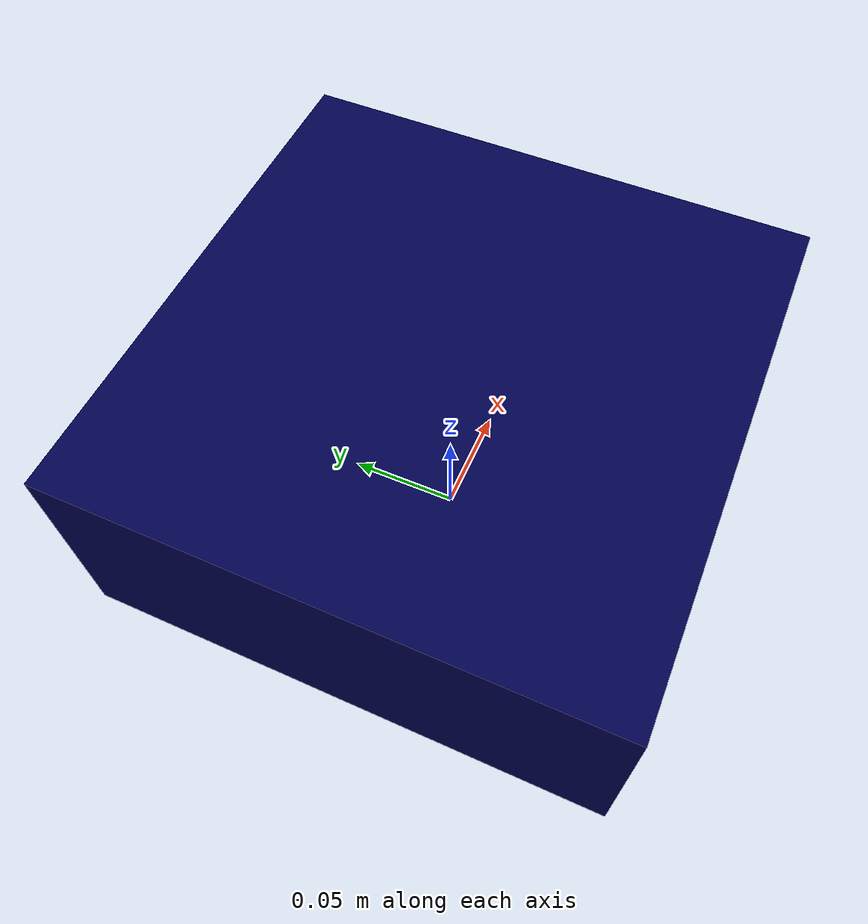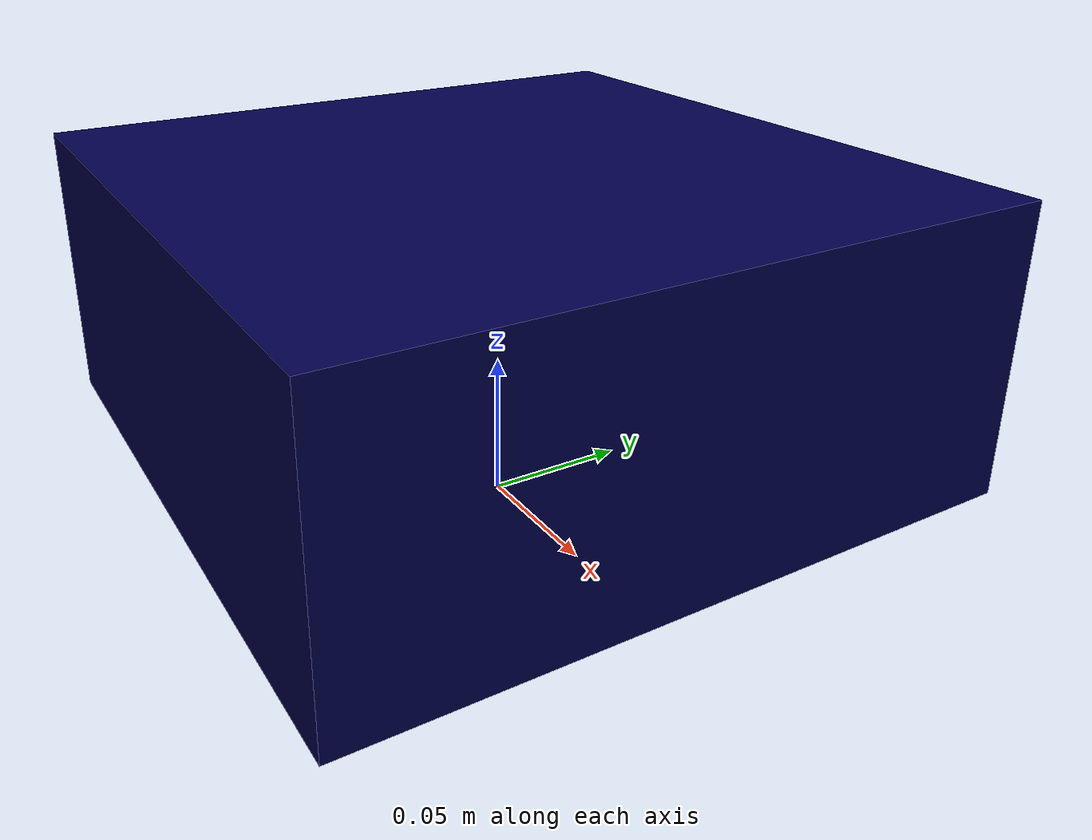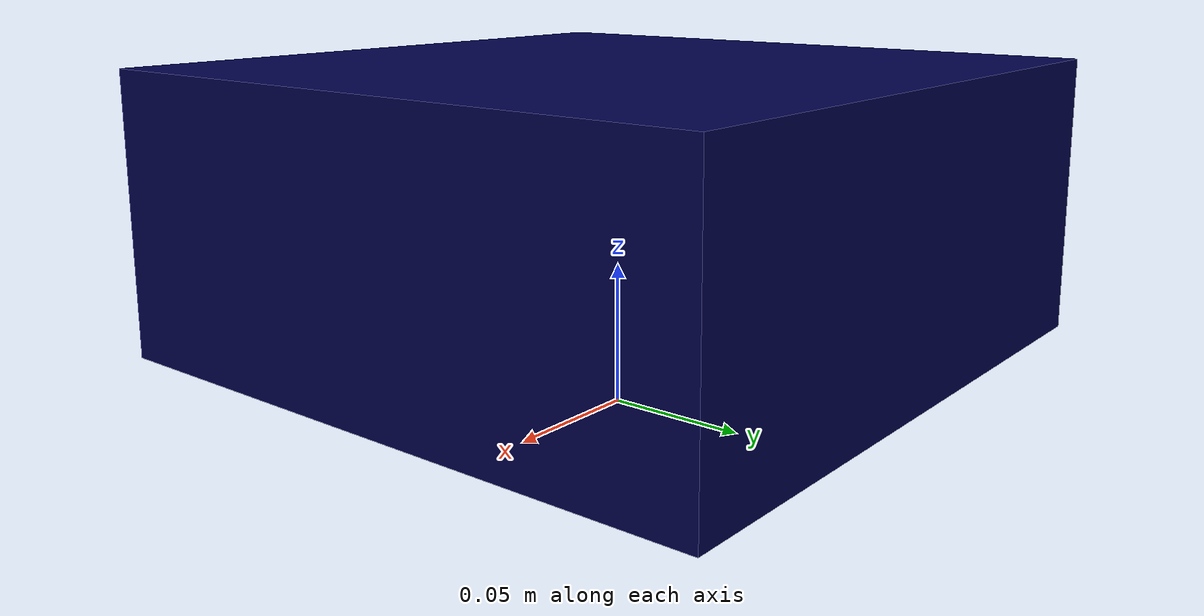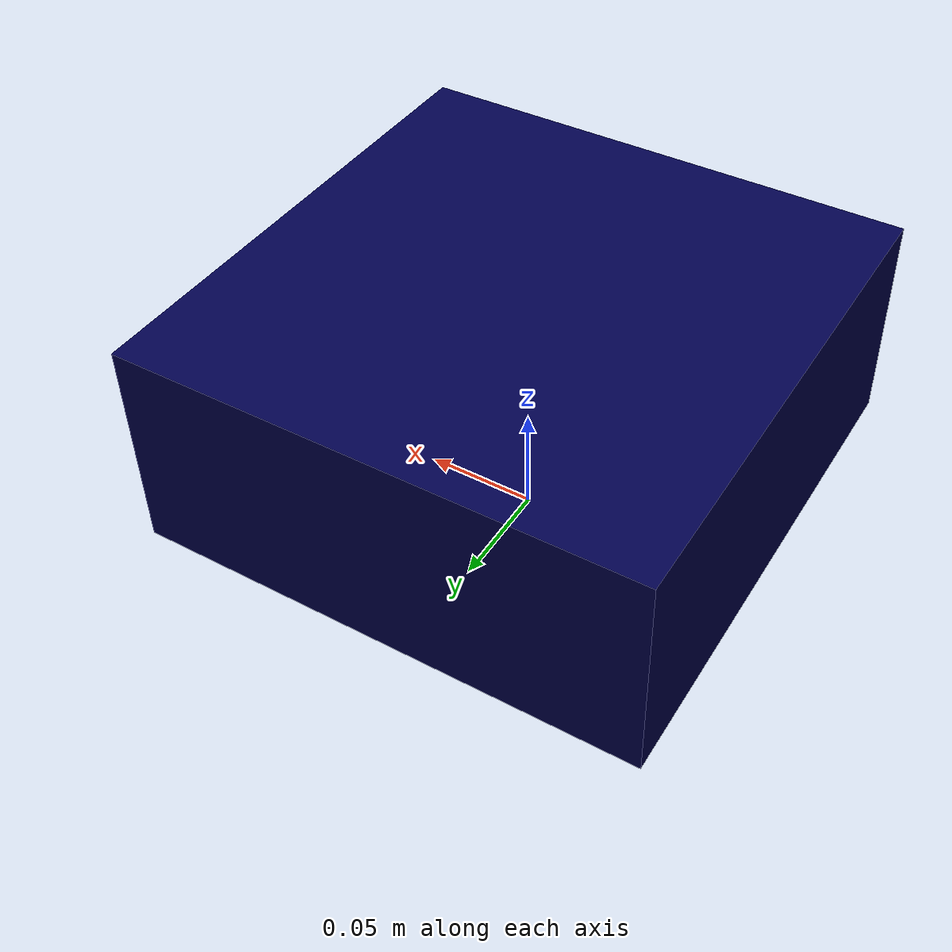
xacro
<?xml version="1.0"?>
<robot xmlns:xacro="http://www.ros.org/wiki/xacro">

  <!-- Dimensions du châssis (en mètres) -->
  <xacro:property name="chassis_longueur"       value="0.230"/>
  <xacro:property name="chassis_largeur"        value="0.230"/>
  <xacro:property name="chassis_hauteur"        value="0.098"/>
  <xacro:property name="base_link_hauteur_sol"  value="0.082"/>
  <xacro:property name="chassis_z_offset"       value="-0.011"/>
  <xacro:property name="masse_chassis"          value="1.9"/>

  <!-- Matériaux : définis une seule fois, référencés par nom ensuite -->
  <material name="bleu_fonce">
    <color rgba="0 0 0.3 1.0"/>
  </material>

  <material name="gris">
    <color rgba="0.8 0.8 0.8 1.0"/>
  </material>

  <!-- Repère sol — aucune géométrie visuelle -->
  <link name="base_footprint"/>

  <!-- Joint fixe entre le sol et l'axe central du robot -->
  <joint name="base_footprint_joint" type="fixed">
    <parent link="base_footprint"/>
    <child  link="base_link"/>
    <origin xyz="0 0 ${base_link_hauteur_sol}" rpy="0 0 0"/>
  </joint>

  <!-- Corps principal : boîte centrée sur base_link -->
  <link name="base_link">
    <visual>
      <geometry>
        <box size="${chassis_longueur} ${chassis_largeur} ${chassis_hauteur}"/>
      </geometry>
      <origin xyz="0 0 ${chassis_z_offset}" rpy="0 0 0"/>
      <material name="bleu_fonce"/>
    </visual>
    <collision>
      <geometry>
        <box size="${chassis_longueur} ${chassis_largeur} ${chassis_hauteur}"/>
      </geometry>
      <origin xyz="0 0 ${chassis_z_offset}" rpy="0 0 0"/>
    </collision>
    <inertial>
      <mass value="${masse_chassis}"/>
      <inertia
        ixx="${masse_chassis*(chassis_largeur*chassis_largeur+chassis_hauteur*chassis_hauteur)/12}"
        iyy="${masse_chassis*(chassis_longueur*chassis_longueur+chassis_hauteur*chassis_hauteur)/12}"
        izz="${masse_chassis*(chassis_longueur*chassis_longueur+chassis_largeur*chassis_largeur)/12}"
        ixy="0" ixz="0" iyz="0"/>
    </inertial>
  </link>

</robot>
